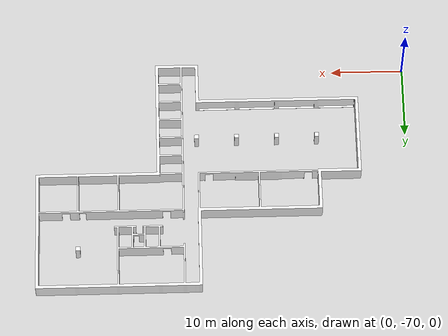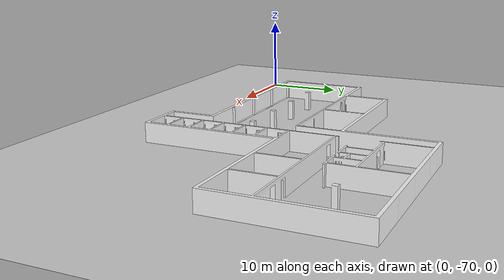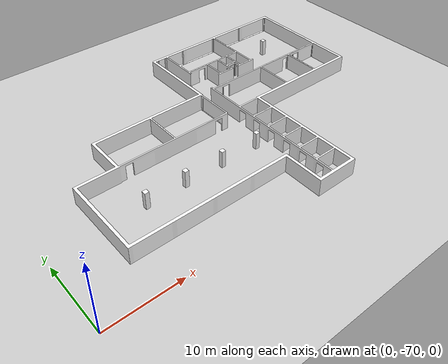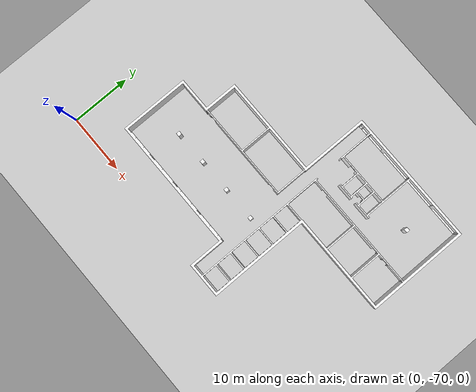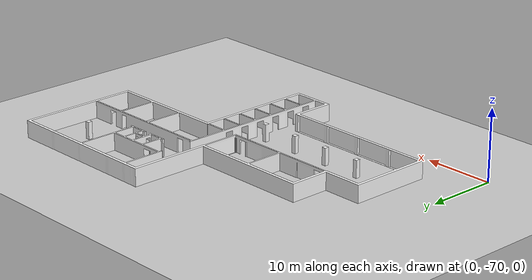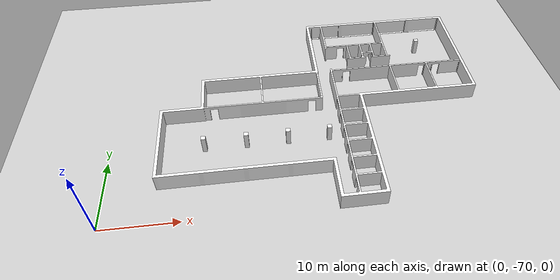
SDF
<sdf version="1.10">
 <world name="default">
  <plugin name="gz::sim::systems::Physics" filename="gz-sim-physics-system"/>
  <plugin name="gz::sim::systems::UserCommands" filename="gz-sim-user-commands-system"/>
  <plugin name="gz::sim::systems::SceneBroadcaster" filename="gz-sim-scene-broadcaster-system"/>
  <plugin name="gz::sim::systems::Sensors" filename="gz-sim-sensors-system">
   <render_engine>ogre2</render_engine>
  </plugin>
  <plugin name="gz::sim::systems::Imu" filename="gz-sim-imu-system"/>
  <gravity>0 0 -9.8000000000000007</gravity>
  <magnetic_field>6.0000000000000002e-06 2.3e-05 -4.1999999999999998e-05</magnetic_field>
  <atmosphere type="adiabatic"/>
  <physics type="ode">
   <max_step_size>0.001</max_step_size>
   <real_time_factor>1</real_time_factor>
   <real_time_update_rate>1000</real_time_update_rate>
  </physics>
  <scene>
   <ambient>0.400000006 0.400000006 0.400000006 1</ambient>
   <background>0.699999988 0.699999988 0.699999988 1</background>
   <shadows>true</shadows>
  </scene>
  <audio><device>default</device></audio>
  <spherical_coordinates>
   <surface_model>EARTH_WGS84</surface_model>
   <latitude_deg>0</latitude_deg>
   <longitude_deg>0</longitude_deg>
   <elevation>0</elevation>
   <heading_deg>0</heading_deg>
  </spherical_coordinates>
  <model name="ground_plane">
   <static>true</static>
   <link name="link">
    <collision name="collision">
     <geometry><plane><normal>0 0 1</normal><size>100 100</size></plane></geometry>
     <surface>
      <contact><collide_bitmask>65535</collide_bitmask></contact>
      <friction><ode><mu>100</mu><mu2>50</mu2></ode></friction>
     </surface>
    </collision>
    <visual name="visual">
     <cast_shadows>false</cast_shadows>
     <geometry><plane><normal>0 0 1</normal><size>100 100</size></plane></geometry>
     <material>
      <script><uri>file://media/materials/scripts/gazebo.material</uri><name>Gazebo/Grey</name></script>
     </material>
    </visual>
    <inertial>
     <mass>1</mass>
     <inertia><ixx>1</ixx><ixy>0</ixy><ixz>0</ixz><iyy>1</iyy><iyz>0</iyz><izz>1</izz></inertia>
    </inertial>
   </link>
  </model>
  <model name="CRTA_v4">
   <link name="link_0">
    <inertial>
     <mass>1</mass>
     <inertia>
      <ixx>0.16666700000000001</ixx>
      <ixy>0</ixy>
      <ixz>0</ixz>
      <iyy>0.16666700000000001</iyy>
      <iyz>0</iyz>
      <izz>0.16666700000000001</izz>
     </inertia>
    </inertial>
    <pose>9.9999999999999995e-07 -1.0000000000000001e-05 0 0 0 0</pose>
    <visual name="visual">
     <geometry>
      <mesh>
       <uri>file:///home/teo/tb3_ign_multi_ws/src/turtlebot3_simulations/turtlebot3_gazebo/models/CRTA_v4/mesh/CRTA_mesh.dae</uri>
       <scale>1 1 1</scale>
      </mesh>
     </geometry>
    </visual>
    <collision name="collision">
     <geometry>
      <mesh>
       <uri>file:///home/teo/tb3_ign_multi_ws/src/turtlebot3_simulations/turtlebot3_gazebo/models/CRTA_v4/mesh/CRTA_mesh.dae</uri>
       <scale>1 1 1</scale>
      </mesh>
     </geometry>
     <surface>
      <friction>
       <ode><mu>1</mu><mu2>1</mu2><fdir1>0 0 0</fdir1><slip1>0</slip1><slip2>0</slip2></ode>
       <torsional>
        <coefficient>1</coefficient>
        <patch_radius>0</patch_radius>
        <surface_radius>0</surface_radius>
        <use_patch_radius>true</use_patch_radius>
        <ode><slip>0</slip></ode>
       </torsional>
      </friction>
      <bounce><restitution_coefficient>0</restitution_coefficient><threshold>1000000</threshold></bounce>
      <contact>
       <collide_without_contact>false</collide_without_contact>
       <collide_without_contact_bitmask>1</collide_without_contact_bitmask>
       <collide_bitmask>1</collide_bitmask>
       <ode>
        <soft_cfm>0</soft_cfm>
        <soft_erp>0.20000000000000001</soft_erp>
        <kp>10000000000000</kp>
        <kd>1</kd>
        <max_vel>0.01</max_vel>
        <min_depth>0</min_depth>
       </ode>
       <bullet>
        <split_impulse>true</split_impulse>
        <split_impulse_penetration_threshold>-0.01</split_impulse_penetration_threshold>
        <soft_cfm>0</soft_cfm>
        <soft_erp>0.20000000000000001</soft_erp>
        <kp>10000000000000</kp>
        <kd>1</kd>
       </bullet>
      </contact>
     </surface>
    </collision>
   </link>
   <static>true</static>
   <pose>6.9763799999999998 -64.5184 -0.095000000000000001 0 0 0</pose>
  </model>
  <light name="sun" type="directional">
   <pose>0 0 10 0 0 0</pose>
   <intensity>1</intensity>
   <direction>-0.5 0.10000000000000001 -0.90000000000000002</direction>
   <diffuse>0.800000012 0.800000012 0.800000012 1</diffuse>
   <specular>0.200000003 0.200000003 0.200000003 1</specular>
   <attenuation>
    <range>1000</range>
    <linear>0.01</linear>
    <constant>0.90000000000000002</constant>
    <quadratic>0.001</quadratic>
   </attenuation>
   <spot><inner_angle>0</inner_angle><outer_angle>0</outer_angle><falloff>0</falloff></spot>
  </light>
 </world>
</sdf>
